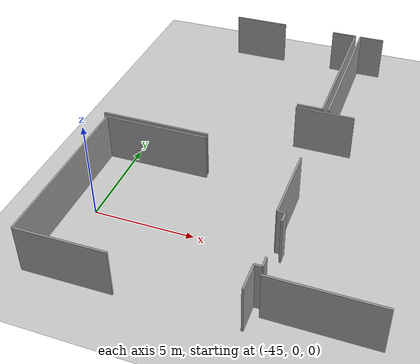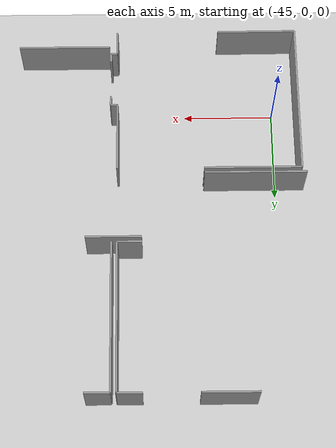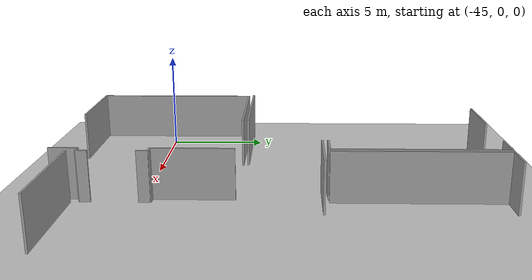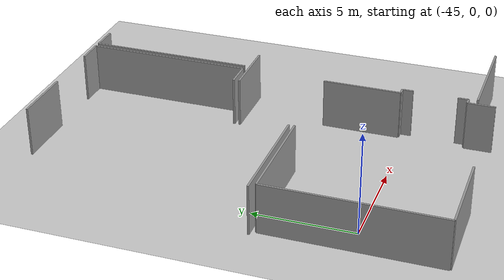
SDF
<sdf version="1.6">
 <world name="default">
  <model name="ground_plane">
   <static>1</static>
   <link name="link">
    <collision name="collision">
     <geometry><plane><normal>0 0 1</normal><size>100 100</size></plane></geometry>
     <surface><friction><ode><mu>100</mu><mu2>50</mu2></ode></friction></surface>
    </collision>
    <visual name="visual">
     <cast_shadows>0</cast_shadows>
     <geometry><plane><normal>0 0 1</normal><size>100 100</size></plane></geometry>
     <material>
      <script><uri>file://media/materials/scripts/gazebo.material</uri><name>Gazebo/Grey</name></script>
     </material>
    </visual>
   </link>
  </model>
  <model name="50041172">
   <static>1</static>
   <link name="Wall_95">
    <collision name="Wall_95_Collision">
     <geometry><box><size>8.55736559652 0.1 2.5</size></box></geometry>
     <pose>4.27868279826 0 1.25 0 0 0</pose>
    </collision>
    <visual name="Wall_95_Visual">
     <pose>4.27868279826 0 1.25 0 0 0</pose>
     <geometry><box><size>8.55736559652 0.1 2.5</size></box></geometry>
     <material>
      <script><uri>file://media/materials/scripts/gazebo.material</uri><name>Gazebo/Grey</name></script>
      <ambient>1 1 1 1</ambient>
     </material>
    </visual>
    <pose>19.3807754597 -21.0751008225 0 0 0 1.57079632679</pose>
   </link>
   <link name="Wall_96">
    <collision name="Wall_96_Collision">
     <geometry><box><size>5.36064272332 0.1 2.5</size></box></geometry>
     <pose>2.68032136166 0 1.25 0 0 0</pose>
    </collision>
    <visual name="Wall_96_Visual">
     <pose>2.68032136166 0 1.25 0 0 0</pose>
     <geometry><box><size>5.36064272332 0.1 2.5</size></box></geometry>
     <material>
      <script><uri>file://media/materials/scripts/gazebo.material</uri><name>Gazebo/Grey</name></script>
      <ambient>1 1 1 1</ambient>
     </material>
    </visual>
    <pose>19.3807754597 -12.5177352259 0 0 0 0.0</pose>
   </link>
   <link name="Wall_97">
    <collision name="Wall_97_Collision">
     <geometry><box><size>3.88580864374 0.1 2.5</size></box></geometry>
     <pose>1.94290432187 0 1.25 0 0 0</pose>
    </collision>
    <visual name="Wall_97_Visual">
     <pose>1.94290432187 0 1.25 0 0 0</pose>
     <geometry><box><size>3.88580864374 0.1 2.5</size></box></geometry>
     <material>
      <script><uri>file://media/materials/scripts/gazebo.material</uri><name>Gazebo/Grey</name></script>
      <ambient>1 1 1 1</ambient>
     </material>
    </visual>
    <pose>29.5046838779 -12.5177352259 0 0 0 -1.57079632679</pose>
   </link>
   <link name="Wall_98">
    <collision name="Wall_98_Collision">
     <geometry><box><size>0.371915785463 0.1 2.5</size></box></geometry>
     <pose>0.185957892731 0 1.25 0 0 0</pose>
    </collision>
    <visual name="Wall_98_Visual">
     <pose>0.185957892731 0 1.25 0 0 0</pose>
     <geometry><box><size>0.371915785463 0.1 2.5</size></box></geometry>
     <material>
      <script><uri>file://media/materials/scripts/gazebo.material</uri><name>Gazebo/Grey</name></script>
      <ambient>1 1 1 1</ambient>
     </material>
    </visual>
    <pose>29.5046838779 -16.4035438697 0 0 0 0.0</pose>
   </link>
   <link name="Wall_99">
    <collision name="Wall_99_Collision">
     <geometry><box><size>0.551903718523 0.1 2.5</size></box></geometry>
     <pose>0.275951859261 0 1.25 0 0 0</pose>
    </collision>
    <visual name="Wall_99_Visual">
     <pose>0.275951859261 0 1.25 0 0 0</pose>
     <geometry><box><size>0.551903718523 0.1 2.5</size></box></geometry>
     <material>
      <script><uri>file://media/materials/scripts/gazebo.material</uri><name>Gazebo/Grey</name></script>
      <ambient>1 1 1 1</ambient>
     </material>
    </visual>
    <pose>29.8765996634 -16.4035438697 0 0 0 -1.57079632679</pose>
   </link>
   <link name="Wall_100">
    <collision name="Wall_100_Collision">
     <geometry><box><size>0.520275634308 0.1 2.5</size></box></geometry>
     <pose>0.260137817154 0 1.25 0 0 0</pose>
    </collision>
    <visual name="Wall_100_Visual">
     <pose>0.260137817154 0 1.25 0 0 0</pose>
     <geometry><box><size>0.520275634308 0.1 2.5</size></box></geometry>
     <material>
      <script><uri>file://media/materials/scripts/gazebo.material</uri><name>Gazebo/Grey</name></script>
      <ambient>1 1 1 1</ambient>
     </material>
    </visual>
    <pose>29.8765996634 -19.1537899717 0 0 0 -1.57079632679</pose>
   </link>
   <link name="Wall_101">
    <collision name="Wall_101_Collision">
     <geometry><box><size>0.353370804357 0.1 2.5</size></box></geometry>
     <pose>0.176685402178 0 1.25 0 0 0</pose>
    </collision>
    <visual name="Wall_101_Visual">
     <pose>0.176685402178 0 1.25 0 0 0</pose>
     <geometry><box><size>0.353370804357 0.1 2.5</size></box></geometry>
     <material>
      <script><uri>file://media/materials/scripts/gazebo.material</uri><name>Gazebo/Grey</name></script>
      <ambient>1 1 1 1</ambient>
     </material>
    </visual>
    <pose>29.8765996634 -19.674065606 0 0 0 3.14159265359</pose>
   </link>
   <link name="Wall_102">
    <collision name="Wall_102_Collision">
     <geometry><box><size>1.37004223429 0.1 2.5</size></box></geometry>
     <pose>0.685021117145 0 1.25 0 0 0</pose>
    </collision>
    <visual name="Wall_102_Visual">
     <pose>0.685021117145 0 1.25 0 0 0</pose>
     <geometry><box><size>1.37004223429 0.1 2.5</size></box></geometry>
     <material>
      <script><uri>file://media/materials/scripts/gazebo.material</uri><name>Gazebo/Grey</name></script>
      <ambient>1 1 1 1</ambient>
     </material>
    </visual>
    <pose>29.523228859 -19.674065606 0 0 0 -1.57079632679</pose>
   </link>
   <link name="Wall_103">
    <collision name="Wall_103_Collision">
     <geometry><box><size>4.39946136569 0.1 2.5</size></box></geometry>
     <pose>2.19973068285 0 1.25 0 0 0</pose>
    </collision>
    <visual name="Wall_103_Visual">
     <pose>2.19973068285 0 1.25 0 0 0</pose>
     <geometry><box><size>4.39946136569 0.1 2.5</size></box></geometry>
     <material>
      <script><uri>file://media/materials/scripts/gazebo.material</uri><name>Gazebo/Grey</name></script>
      <ambient>1 1 1 1</ambient>
     </material>
    </visual>
    <pose>23.7801276555 -21.0441078403 0 0 0 -3.13454787335</pose>
   </link>
   <link name="Wall_109">
    <collision name="Wall_109_Collision">
     <geometry><box><size>5.12971960243 0.1 2.5</size></box></geometry>
     <pose>2.56485980121 0 1.25 0 0 0</pose>
    </collision>
    <visual name="Wall_109_Visual">
     <pose>2.56485980121 0 1.25 0 0 0</pose>
     <geometry><box><size>5.12971960243 0.1 2.5</size></box></geometry>
     <material>
      <script><uri>file://media/materials/scripts/gazebo.material</uri><name>Gazebo/Grey</name></script>
      <ambient>1 1 1 1</ambient>
     </material>
    </visual>
    <pose>29.9529389349 -20.1074592741 0 0 0 0.0</pose>
   </link>
   <link name="Wall_208">
    <collision name="Wall_208_Collision">
     <geometry><box><size>3.04747388143 0.1 2.5</size></box></geometry>
     <pose>1.52373694071 0 1.25 0 0 0</pose>
    </collision>
    <visual name="Wall_208_Visual">
     <pose>1.52373694071 0 1.25 0 0 0</pose>
     <geometry><box><size>3.04747388143 0.1 2.5</size></box></geometry>
     <material>
      <script><uri>file://media/materials/scripts/gazebo.material</uri><name>Gazebo/Grey</name></script>
      <ambient>1 1 1 1</ambient>
     </material>
    </visual>
    <pose>22.131402623 -0.0 0 0 0 0.0</pose>
   </link>
   <link name="Wall_209">
    <collision name="Wall_209_Collision">
     <geometry><box><size>1.3536566003 0.1 2.5</size></box></geometry>
     <pose>0.676828300149 0 1.25 0 0 0</pose>
    </collision>
    <visual name="Wall_209_Visual">
     <pose>0.676828300149 0 1.25 0 0 0</pose>
     <geometry><box><size>1.3536566003 0.1 2.5</size></box></geometry>
     <material>
      <script><uri>file://media/materials/scripts/gazebo.material</uri><name>Gazebo/Grey</name></script>
      <ambient>1 1 1 1</ambient>
     </material>
    </visual>
    <pose>28.1511542981 -0.0 0 0 0 0.0</pose>
   </link>
   <link name="Wall_210">
    <collision name="Wall_210_Collision">
     <geometry><box><size>8.22368295704 0.1 2.5</size></box></geometry>
     <pose>4.11184147852 0 1.25 0 0 0</pose>
    </collision>
    <visual name="Wall_210_Visual">
     <pose>4.11184147852 0 1.25 0 0 0</pose>
     <geometry><box><size>8.22368295704 0.1 2.5</size></box></geometry>
     <material>
      <script><uri>file://media/materials/scripts/gazebo.material</uri><name>Gazebo/Grey</name></script>
      <ambient>1 1 1 1</ambient>
     </material>
    </visual>
    <pose>29.5048108984 -0.0 0 0 0 -1.57079632679</pose>
   </link>
   <link name="Wall_211">
    <collision name="Wall_211_Collision">
     <geometry><box><size>1.3536566003 0.1 2.5</size></box></geometry>
     <pose>0.676828300149 0 1.25 0 0 0</pose>
    </collision>
    <visual name="Wall_211_Visual">
     <pose>0.676828300149 0 1.25 0 0 0</pose>
     <geometry><box><size>1.3536566003 0.1 2.5</size></box></geometry>
     <material>
      <script><uri>file://media/materials/scripts/gazebo.material</uri><name>Gazebo/Grey</name></script>
      <ambient>1 1 1 1</ambient>
     </material>
    </visual>
    <pose>29.5048108984 -8.22368295704 0 0 0 3.14159265359</pose>
   </link>
   <link name="Wall_213">
    <collision name="Wall_213_Collision">
     <geometry><box><size>8.21542662983 0.1 2.5</size></box></geometry>
     <pose>4.10771331492 0 1.25 0 0 0</pose>
    </collision>
    <visual name="Wall_213_Visual">
     <pose>4.10771331492 0 1.25 0 0 0</pose>
     <geometry><box><size>8.21542662983 0.1 2.5</size></box></geometry>
     <material>
      <script><uri>file://media/materials/scripts/gazebo.material</uri><name>Gazebo/Grey</name></script>
      <ambient>1 1 1 1</ambient>
     </material>
    </visual>
    <pose>29.8105490458 -8.22584230415 0 0 0 1.57079632679</pose>
   </link>
   <link name="Wall_214">
    <collision name="Wall_214_Collision">
     <geometry><box><size>1.36343717253 0.1 2.5</size></box></geometry>
     <pose>0.681718586263 0 1.25 0 0 0</pose>
    </collision>
    <visual name="Wall_214_Visual">
     <pose>0.681718586263 0 1.25 0 0 0</pose>
     <geometry><box><size>1.36343717253 0.1 2.5</size></box></geometry>
     <material>
      <script><uri>file://media/materials/scripts/gazebo.material</uri><name>Gazebo/Grey</name></script>
      <ambient>1 1 1 1</ambient>
     </material>
    </visual>
    <pose>29.8105490458 -0.0104156743196 0 0 0 0.0</pose>
   </link>
   <link name="Wall_295">
    <collision name="Wall_295_Collision">
     <geometry><box><size>3.04493347306 0.1 2.5</size></box></geometry>
     <pose>1.52246673653 0 1.25 0 0 0</pose>
    </collision>
    <visual name="Wall_295_Visual">
     <pose>1.52246673653 0 1.25 0 0 0</pose>
     <geometry><box><size>3.04493347306 0.1 2.5</size></box></geometry>
     <material>
      <script><uri>file://media/materials/scripts/gazebo.material</uri><name>Gazebo/Grey</name></script>
      <ambient>1 1 1 1</ambient>
     </material>
    </visual>
    <pose>28.1705884221 -8.50935187831 0 0 0 0.0</pose>
   </link>
   <link name="Wall_303">
    <collision name="Wall_303_Collision">
     <geometry><box><size>5.61430249913 0.1 2.5</size></box></geometry>
     <pose>2.80715124956 0 1.25 0 0 0</pose>
    </collision>
    <visual name="Wall_303_Visual">
     <pose>2.80715124956 0 1.25 0 0 0</pose>
     <geometry><box><size>5.61430249913 0.1 2.5</size></box></geometry>
     <material>
      <script><uri>file://media/materials/scripts/gazebo.material</uri><name>Gazebo/Grey</name></script>
      <ambient>1 1 1 1</ambient>
     </material>
    </visual>
    <pose>24.715633038 -12.2396875298 0 0 0 3.14159265359</pose>
   </link>
   <pose>-65.7 16.7659077197 0 0 0 0</pose>
  </model>
 </world>
</sdf>
